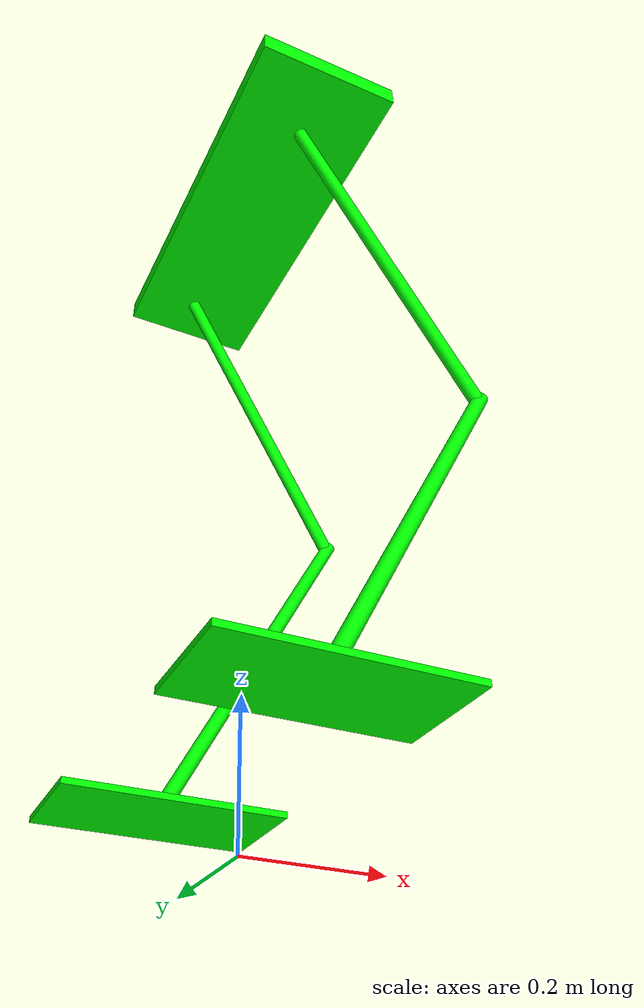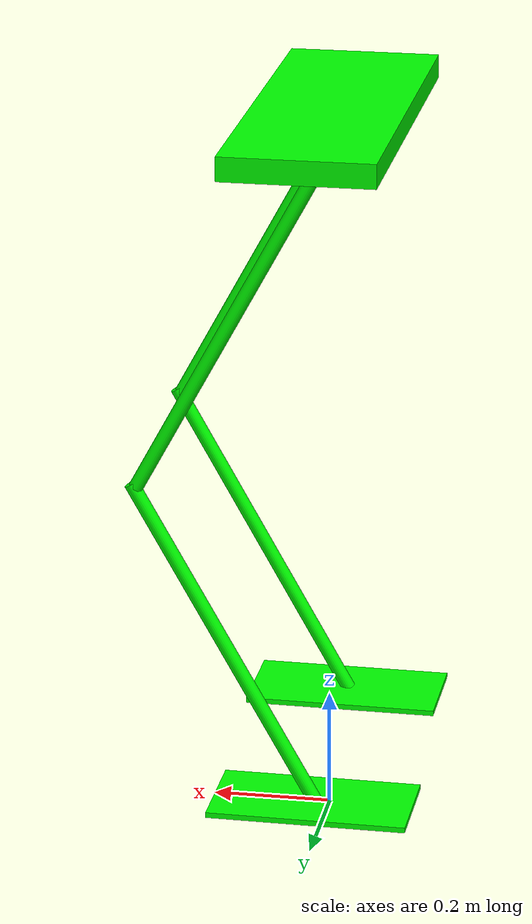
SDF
<?xml version='1.0'?>
<sdf version='1.7'>
  <model name='green-robot'>
    <model name='green-robot'>
      <link name='link_0'>
        <inertial>
          <mass>0.00693394</mass>
          <inertia>
            <ixx>0.00027257</ixx>
            <ixy>0</ixy>
            <ixz>0</ixz>
            <iyy>3.743e-05</iyy>
            <iyz>0</iyz>
            <izz>0.00030813</izz>
          </inertia>
          <pose>0 0 0 0 -0 0</pose>
        </inertial>
        <pose>-0.000636 0.001622 1.21471 0 -0 0</pose>
        <gravity>0</gravity>
        <self_collide>0</self_collide>
        <kinematic>0</kinematic>
        <enable_wind>0</enable_wind>
        <visual name='visual'>
          <pose>0 0 0 0 -0 0</pose>
          <geometry>
            <box>
              <size>0.251315 0.685637 0.040238</size>
            </box>
          </geometry>
          <material>
            <lighting>1</lighting>
            <script>
              <uri>file://media/materials/scripts/gazebo.material</uri>
              <name>Gazebo/Grey</name>
            </script>
            <shader type='pixel'>
              <normal_map>__default__</normal_map>
            </shader>
            <ambient>0 1 0 1</ambient>
            <diffuse>0 1 0 1</diffuse>
            <specular>0 1 0 1</specular>
            <emissive>0 0 0 1</emissive>
          </material>
          <transparency>0</transparency>
          <cast_shadows>1</cast_shadows>
        </visual>
        <collision name='collision'>
          <laser_retro>0</laser_retro>
          <max_contacts>10</max_contacts>
          <pose>0 0 0 0 -0 0</pose>
          <geometry>
            <box>
              <size>0.251315 0.685637 0.040238</size>
            </box>
          </geometry>
          <surface>
            <friction>
              <ode>
                <mu>1</mu>
                <mu2>1</mu2>
                <fdir1>0 0 0</fdir1>
                <slip1>0</slip1>
                <slip2>0</slip2>
              </ode>
              <torsional>
                <coefficient>1</coefficient>
                <patch_radius>0</patch_radius>
                <surface_radius>0</surface_radius>
                <use_patch_radius>1</use_patch_radius>
                <ode>
                  <slip>0</slip>
                </ode>
              </torsional>
            </friction>
            <bounce>
              <restitution_coefficient>0</restitution_coefficient>
              <threshold>1e+06</threshold>
            </bounce>
            <contact>
              <collide_without_contact>0</collide_without_contact>
              <collide_without_contact_bitmask>1</collide_without_contact_bitmask>
              <collide_bitmask>1</collide_bitmask>
              <ode>
                <soft_cfm>0</soft_cfm>
                <soft_erp>0.2</soft_erp>
                <kp>1e+13</kp>
                <kd>1</kd>
                <max_vel>0.01</max_vel>
                <min_depth>0</min_depth>
              </ode>
              <bullet>
                <split_impulse>1</split_impulse>
                <split_impulse_penetration_threshold>-0.01</split_impulse_penetration_threshold>
                <soft_cfm>0</soft_cfm>
                <soft_erp>0.2</soft_erp>
                <kp>1e+13</kp>
                <kd>1</kd>
              </bullet>
            </contact>
          </surface>
        </collision>
      </link>
      <link name='link_0_0_clone'>
        <inertial>
          <mass>0.000350394</mass>
          <inertia>
            <ixx>1.10999e-05</ixx>
            <ixy>0</ixy>
            <ixz>0</ixz>
            <iyy>1.10999e-05</iyy>
            <iyz>0</iyz>
            <izz>2.49424e-08</izz>
          </inertia>
          <pose>0 0 0 0 -0 0</pose>
        </inertial>
        <pose>0.148869 -0.215496 0.920825 0 -0.497724 0</pose>
        <gravity>1</gravity>
        <self_collide>0</self_collide>
        <kinematic>0</kinematic>
        <enable_wind>0</enable_wind>
        <visual name='visual_0'>
          <pose>0 0 0 0 -0 0</pose>
          <geometry>
            <cylinder>
              <radius>0.0119318</radius>
              <length>0.616209</length>
            </cylinder>
          </geometry>
          <material>
            <lighting>1</lighting>
            <script>
              <uri>file://media/materials/scripts/gazebo.material</uri>
              <name>Gazebo/Grey</name>
            </script>
            <shader type='pixel'>
              <normal_map>__default__</normal_map>
            </shader>
            <ambient>0 1 0 1</ambient>
            <diffuse>0 1 0 1</diffuse>
            <specular>0 1 0 1</specular>
            <emissive>0 0 0 1</emissive>
          </material>
          <transparency>0</transparency>
          <cast_shadows>1</cast_shadows>
        </visual>
        <collision name='collision'>
          <laser_retro>0</laser_retro>
          <max_contacts>10</max_contacts>
          <pose>0 0 0 0 -0 0</pose>
          <geometry>
            <cylinder>
              <radius>0.011932</radius>
              <length>0.616209</length>
            </cylinder>
          </geometry>
          <surface>
            <friction>
              <ode>
                <mu>1</mu>
                <mu2>1</mu2>
                <fdir1>0 0 0</fdir1>
                <slip1>0</slip1>
                <slip2>0</slip2>
              </ode>
              <torsional>
                <coefficient>1</coefficient>
                <patch_radius>0</patch_radius>
                <surface_radius>0</surface_radius>
                <use_patch_radius>1</use_patch_radius>
                <ode>
                  <slip>0</slip>
                </ode>
              </torsional>
            </friction>
            <bounce>
              <restitution_coefficient>0</restitution_coefficient>
              <threshold>1e+06</threshold>
            </bounce>
            <contact>
              <collide_without_contact>0</collide_without_contact>
              <collide_without_contact_bitmask>1</collide_without_contact_bitmask>
              <collide_bitmask>1</collide_bitmask>
              <ode>
                <soft_cfm>0</soft_cfm>
                <soft_erp>0.2</soft_erp>
                <kp>1e+13</kp>
                <kd>1</kd>
                <max_vel>0.01</max_vel>
                <min_depth>0</min_depth>
              </ode>
              <bullet>
                <split_impulse>1</split_impulse>
                <split_impulse_penetration_threshold>-0.01</split_impulse_penetration_threshold>
                <soft_cfm>0</soft_cfm>
                <soft_erp>0.2</soft_erp>
                <kp>1e+13</kp>
                <kd>1</kd>
              </bullet>
            </contact>
          </surface>
        </collision>
      </link>
      <link name='link_0_0_clone_clone'>
        <inertial>
          <mass>0.000350394</mass>
          <inertia>
            <ixx>1.10999e-05</ixx>
            <ixy>0</ixy>
            <ixz>0</ixz>
            <iyy>1.10999e-05</iyy>
            <iyz>0</iyz>
            <izz>2.49424e-08</izz>
          </inertia>
          <pose>0 0 0 0 -0 0</pose>
        </inertial>
        <pose>0.128825 0.256686 0.921798 0 -0.497724 0</pose>
        <gravity>1</gravity>
        <self_collide>0</self_collide>
        <kinematic>0</kinematic>
        <enable_wind>0</enable_wind>
        <visual name='visual_0'>
          <pose>0 0 0 0 -0 0</pose>
          <geometry>
            <cylinder>
              <radius>0.0119318</radius>
              <length>0.616209</length>
            </cylinder>
          </geometry>
          <material>
            <lighting>1</lighting>
            <script>
              <uri>file://media/materials/scripts/gazebo.material</uri>
              <name>Gazebo/Grey</name>
            </script>
            <shader type='pixel'>
              <normal_map>__default__</normal_map>
            </shader>
            <ambient>0 1 0 1</ambient>
            <diffuse>0 1 0 1</diffuse>
            <specular>0 1 0 1</specular>
            <emissive>0 0 0 1</emissive>
          </material>
          <transparency>0</transparency>
          <cast_shadows>1</cast_shadows>
        </visual>
        <collision name='collision'>
          <laser_retro>0</laser_retro>
          <max_contacts>10</max_contacts>
          <pose>0 0 0 0 -0 0</pose>
          <geometry>
            <cylinder>
              <radius>0.011932</radius>
              <length>0.616209</length>
            </cylinder>
          </geometry>
          <surface>
            <friction>
              <ode>
                <mu>1</mu>
                <mu2>1</mu2>
                <fdir1>0 0 0</fdir1>
                <slip1>0</slip1>
                <slip2>0</slip2>
              </ode>
              <torsional>
                <coefficient>1</coefficient>
                <patch_radius>0</patch_radius>
                <surface_radius>0</surface_radius>
                <use_patch_radius>1</use_patch_radius>
                <ode>
                  <slip>0</slip>
                </ode>
              </torsional>
            </friction>
            <bounce>
              <restitution_coefficient>0</restitution_coefficient>
              <threshold>1e+06</threshold>
            </bounce>
            <contact>
              <collide_without_contact>0</collide_without_contact>
              <collide_without_contact_bitmask>1</collide_without_contact_bitmask>
              <collide_bitmask>1</collide_bitmask>
              <ode>
                <soft_cfm>0</soft_cfm>
                <soft_erp>0.2</soft_erp>
                <kp>1e+13</kp>
                <kd>1</kd>
                <max_vel>0.01</max_vel>
                <min_depth>0</min_depth>
              </ode>
              <bullet>
                <split_impulse>1</split_impulse>
                <split_impulse_penetration_threshold>-0.01</split_impulse_penetration_threshold>
                <soft_cfm>0</soft_cfm>
                <soft_erp>0.2</soft_erp>
                <kp>1e+13</kp>
                <kd>1</kd>
              </bullet>
            </contact>
          </surface>
        </collision>
      </link>
      <link name='link_0_0_clone_clone_2'>
        <inertial>
          <mass>0.000350394</mass>
          <inertia>
            <ixx>1.10999e-05</ixx>
            <ixy>0</ixy>
            <ixz>0</ixz>
            <iyy>1.10999e-05</iyy>
            <iyz>0</iyz>
            <izz>2.49424e-08</izz>
          </inertia>
          <pose>0 0 0 0 -0 0</pose>
        </inertial>
        <pose>0.152447 -0.215495 0.389072 0 0.511281 0</pose>
        <gravity>1</gravity>
        <self_collide>0</self_collide>
        <kinematic>0</kinematic>
        <enable_wind>0</enable_wind>
        <visual name='visual_0'>
          <pose>0 0 0 0 -0 0</pose>
          <geometry>
            <cylinder>
              <radius>0.0119318</radius>
              <length>0.616209</length>
            </cylinder>
          </geometry>
          <material>
            <lighting>1</lighting>
            <script>
              <uri>file://media/materials/scripts/gazebo.material</uri>
              <name>Gazebo/Grey</name>
            </script>
            <shader type='pixel'>
              <normal_map>__default__</normal_map>
            </shader>
            <ambient>0 1 0 1</ambient>
            <diffuse>0 1 0 1</diffuse>
            <specular>0 1 0 1</specular>
            <emissive>0 0 0 1</emissive>
          </material>
          <transparency>0</transparency>
          <cast_shadows>1</cast_shadows>
        </visual>
        <collision name='collision'>
          <laser_retro>0</laser_retro>
          <max_contacts>10</max_contacts>
          <pose>0 0 0 0 -0 0</pose>
          <geometry>
            <cylinder>
              <radius>0.011932</radius>
              <length>0.616209</length>
            </cylinder>
          </geometry>
          <surface>
            <friction>
              <ode>
                <mu>1</mu>
                <mu2>1</mu2>
                <fdir1>0 0 0</fdir1>
                <slip1>0</slip1>
                <slip2>0</slip2>
              </ode>
              <torsional>
                <coefficient>1</coefficient>
                <patch_radius>0</patch_radius>
                <surface_radius>0</surface_radius>
                <use_patch_radius>1</use_patch_radius>
                <ode>
                  <slip>0</slip>
                </ode>
              </torsional>
            </friction>
            <bounce>
              <restitution_coefficient>0</restitution_coefficient>
              <threshold>1e+06</threshold>
            </bounce>
            <contact>
              <collide_without_contact>0</collide_without_contact>
              <collide_without_contact_bitmask>1</collide_without_contact_bitmask>
              <collide_bitmask>1</collide_bitmask>
              <ode>
                <soft_cfm>0</soft_cfm>
                <soft_erp>0.2</soft_erp>
                <kp>1e+13</kp>
                <kd>1</kd>
                <max_vel>0.01</max_vel>
                <min_depth>0</min_depth>
              </ode>
              <bullet>
                <split_impulse>1</split_impulse>
                <split_impulse_penetration_threshold>-0.01</split_impulse_penetration_threshold>
                <soft_cfm>0</soft_cfm>
                <soft_erp>0.2</soft_erp>
                <kp>1e+13</kp>
                <kd>1</kd>
              </bullet>
            </contact>
          </surface>
        </collision>
      </link>
      <link name='link_0_0_clone_clone_2_clone'>
        <inertial>
          <mass>0.000350394</mass>
          <inertia>
            <ixx>1.10999e-05</ixx>
            <ixy>0</ixy>
            <ixz>0</ixz>
            <iyy>1.10999e-05</iyy>
            <iyz>0</iyz>
            <izz>2.49424e-08</izz>
          </inertia>
          <pose>0 0 0 0 -0 0</pose>
        </inertial>
        <pose>0.132403 0.256686 0.389072 0 0.511281 0</pose>
        <gravity>1</gravity>
        <self_collide>0</self_collide>
        <kinematic>0</kinematic>
        <enable_wind>0</enable_wind>
        <visual name='visual_0'>
          <pose>0 0 0 0 -0 0</pose>
          <geometry>
            <cylinder>
              <radius>0.0119318</radius>
              <length>0.616209</length>
            </cylinder>
          </geometry>
          <material>
            <lighting>1</lighting>
            <script>
              <uri>file://media/materials/scripts/gazebo.material</uri>
              <name>Gazebo/Grey</name>
            </script>
            <shader type='pixel'>
              <normal_map>__default__</normal_map>
            </shader>
            <ambient>0 1 0 1</ambient>
            <diffuse>0 1 0 1</diffuse>
            <specular>0 1 0 1</specular>
            <emissive>0 0 0 1</emissive>
          </material>
          <transparency>0</transparency>
          <cast_shadows>1</cast_shadows>
        </visual>
        <collision name='collision'>
          <laser_retro>0</laser_retro>
          <max_contacts>10</max_contacts>
          <pose>0 0 0 0 -0 0</pose>
          <geometry>
            <cylinder>
              <radius>0.011932</radius>
              <length>0.616209</length>
            </cylinder>
          </geometry>
          <surface>
            <friction>
              <ode>
                <mu>1</mu>
                <mu2>1</mu2>
                <fdir1>0 0 0</fdir1>
                <slip1>0</slip1>
                <slip2>0</slip2>
              </ode>
              <torsional>
                <coefficient>1</coefficient>
                <patch_radius>0</patch_radius>
                <surface_radius>0</surface_radius>
                <use_patch_radius>1</use_patch_radius>
                <ode>
                  <slip>0</slip>
                </ode>
              </torsional>
            </friction>
            <bounce>
              <restitution_coefficient>0</restitution_coefficient>
              <threshold>1e+06</threshold>
            </bounce>
            <contact>
              <collide_without_contact>0</collide_without_contact>
              <collide_without_contact_bitmask>1</collide_without_contact_bitmask>
              <collide_bitmask>1</collide_bitmask>
              <ode>
                <soft_cfm>0</soft_cfm>
                <soft_erp>0.2</soft_erp>
                <kp>1e+13</kp>
                <kd>1</kd>
                <max_vel>0.01</max_vel>
                <min_depth>0</min_depth>
              </ode>
              <bullet>
                <split_impulse>1</split_impulse>
                <split_impulse_penetration_threshold>-0.01</split_impulse_penetration_threshold>
                <soft_cfm>0</soft_cfm>
                <soft_erp>0.2</soft_erp>
                <kp>1e+13</kp>
                <kd>1</kd>
              </bullet>
            </contact>
          </surface>
        </collision>
      </link>
      <link name='link_0_clone'>
        <inertial>
          <mass>0.000508908</mass>
          <inertia>
            <ixx>4.59216e-06</ixx>
            <ixy>0</ixy>
            <ixz>0</ixz>
            <iyy>1.22054e-06</iyy>
            <iyz>0</iyz>
            <izz>5.80563e-06</izz>
          </inertia>
          <pose>0 0 0 0 -0 0</pose>
        </inertial>
        <pose>0.003853 -0.215495 0.119095 0 0 -1.57803</pose>
        <gravity>1</gravity>
        <self_collide>0</self_collide>
        <kinematic>0</kinematic>
        <enable_wind>0</enable_wind>
        <visual name='visual'>
          <pose>0 0 0 0 -0 0</pose>
          <geometry>
            <box>
              <size>0.169401 0.328937 0.009131</size>
            </box>
          </geometry>
          <material>
            <lighting>1</lighting>
            <script>
              <uri>file://media/materials/scripts/gazebo.material</uri>
              <name>Gazebo/Grey</name>
            </script>
            <shader type='pixel'>
              <normal_map>__default__</normal_map>
            </shader>
            <ambient>0 1 0 1</ambient>
            <diffuse>0 1 0 1</diffuse>
            <specular>0 1 0 1</specular>
            <emissive>0 0 0 1</emissive>
          </material>
          <transparency>0</transparency>
          <cast_shadows>1</cast_shadows>
        </visual>
        <collision name='collision'>
          <laser_retro>0</laser_retro>
          <max_contacts>10</max_contacts>
          <pose>0 0 0 0 -0 0</pose>
          <geometry>
            <box>
              <size>0.169401 0.328937 0.009131</size>
            </box>
          </geometry>
          <surface>
            <friction>
              <ode>
                <mu>1</mu>
                <mu2>1</mu2>
                <fdir1>0 0 0</fdir1>
                <slip1>0</slip1>
                <slip2>0</slip2>
              </ode>
              <torsional>
                <coefficient>1</coefficient>
                <patch_radius>0</patch_radius>
                <surface_radius>0</surface_radius>
                <use_patch_radius>1</use_patch_radius>
                <ode>
                  <slip>0</slip>
                </ode>
              </torsional>
            </friction>
            <bounce>
              <restitution_coefficient>0</restitution_coefficient>
              <threshold>1e+06</threshold>
            </bounce>
            <contact>
              <collide_without_contact>0</collide_without_contact>
              <collide_without_contact_bitmask>1</collide_without_contact_bitmask>
              <collide_bitmask>1</collide_bitmask>
              <ode>
                <soft_cfm>0</soft_cfm>
                <soft_erp>0.2</soft_erp>
                <kp>1e+13</kp>
                <kd>1</kd>
                <max_vel>0.01</max_vel>
                <min_depth>0</min_depth>
              </ode>
              <bullet>
                <split_impulse>1</split_impulse>
                <split_impulse_penetration_threshold>-0.01</split_impulse_penetration_threshold>
                <soft_cfm>0</soft_cfm>
                <soft_erp>0.2</soft_erp>
                <kp>1e+13</kp>
                <kd>1</kd>
              </bullet>
            </contact>
          </surface>
        </collision>
      </link>
      <link name='link_0_clone_clone'>
        <inertial>
          <mass>0.000508908</mass>
          <inertia>
            <ixx>4.59216e-06</ixx>
            <ixy>0</ixy>
            <ixz>0</ixz>
            <iyy>1.22054e-06</iyy>
            <iyz>0</iyz>
            <izz>5.80563e-06</izz>
          </inertia>
          <pose>0 0 0 0 -0 0</pose>
        </inertial>
        <pose>-0.01593 0.256685 0.119095 0 0 -1.57803</pose>
        <gravity>1</gravity>
        <self_collide>0</self_collide>
        <kinematic>0</kinematic>
        <enable_wind>0</enable_wind>
        <visual name='visual'>
          <pose>0 0 0 0 -0 0</pose>
          <geometry>
            <box>
              <size>0.169401 0.328937 0.009131</size>
            </box>
          </geometry>
          <material>
            <lighting>1</lighting>
            <script>
              <uri>file://media/materials/scripts/gazebo.material</uri>
              <name>Gazebo/Grey</name>
            </script>
            <shader type='pixel'>
              <normal_map>__default__</normal_map>
            </shader>
            <ambient>0 1 0 1</ambient>
            <diffuse>0 1 0 1</diffuse>
            <specular>0 1 0 1</specular>
            <emissive>0 0 0 1</emissive>
          </material>
          <transparency>0</transparency>
          <cast_shadows>1</cast_shadows>
        </visual>
        <collision name='collision'>
          <laser_retro>0</laser_retro>
          <max_contacts>10</max_contacts>
          <pose>0 0 0 0 -0 0</pose>
          <geometry>
            <box>
              <size>0.169401 0.328937 0.009131</size>
            </box>
          </geometry>
          <surface>
            <friction>
              <ode>
                <mu>1</mu>
                <mu2>1</mu2>
                <fdir1>0 0 0</fdir1>
                <slip1>0</slip1>
                <slip2>0</slip2>
              </ode>
              <torsional>
                <coefficient>1</coefficient>
                <patch_radius>0</patch_radius>
                <surface_radius>0</surface_radius>
                <use_patch_radius>1</use_patch_radius>
                <ode>
                  <slip>0</slip>
                </ode>
              </torsional>
            </friction>
            <bounce>
              <restitution_coefficient>0</restitution_coefficient>
              <threshold>1e+06</threshold>
            </bounce>
            <contact>
              <collide_without_contact>0</collide_without_contact>
              <collide_without_contact_bitmask>1</collide_without_contact_bitmask>
              <collide_bitmask>1</collide_bitmask>
              <ode>
                <soft_cfm>0</soft_cfm>
                <soft_erp>0.2</soft_erp>
                <kp>1e+13</kp>
                <kd>1</kd>
                <max_vel>0.01</max_vel>
                <min_depth>0</min_depth>
              </ode>
              <bullet>
                <split_impulse>1</split_impulse>
                <split_impulse_penetration_threshold>-0.01</split_impulse_penetration_threshold>
                <soft_cfm>0</soft_cfm>
                <soft_erp>0.2</soft_erp>
                <kp>1e+13</kp>
                <kd>1</kd>
              </bullet>
            </contact>
          </surface>
        </collision>
      </link>
      <joint name='link_0_0_clone_JOINT_6' type='fixed'>
        <parent>link_0_0_clone</parent>
        <child>link_0_0_clone_clone_2</child>
        <pose>0 0 0 0 -0 0</pose>
        <physics>
          <ode>
            <limit>
              <cfm>0</cfm>
              <erp>0.2</erp>
            </limit>
            <suspension>
              <cfm>0</cfm>
              <erp>0.2</erp>
            </suspension>
          </ode>
        </physics>
      </joint>
      <joint name='link_0_0_clone_clone_2_JOINT_10' type='fixed'>
        <parent>link_0_0_clone_clone_2</parent>
        <child>link_0_clone</child>
        <pose>0 0 0 0 -0 0</pose>
        <physics>
          <ode>
            <limit>
              <cfm>0</cfm>
              <erp>0.2</erp>
            </limit>
            <suspension>
              <cfm>0</cfm>
              <erp>0.2</erp>
            </suspension>
          </ode>
        </physics>
      </joint>
      <joint name='link_0_0_clone_clone_2_JOINT_11' type='fixed'>
        <parent>link_0_0_clone_clone_2</parent>
        <child>link_0_clone</child>
        <pose>0 0 0 0 -0 0</pose>
        <physics>
          <ode>
            <limit>
              <cfm>0</cfm>
              <erp>0.2</erp>
            </limit>
            <suspension>
              <cfm>0</cfm>
              <erp>0.2</erp>
            </suspension>
          </ode>
        </physics>
      </joint>
      <joint name='link_0_0_clone_clone_2_clone_JOINT_12' type='fixed'>
        <parent>link_0_0_clone_clone_2_clone</parent>
        <child>link_0_clone_clone</child>
        <pose>0 0 0 0 -0 0</pose>
        <physics>
          <ode>
            <limit>
              <cfm>0</cfm>
              <erp>0.2</erp>
            </limit>
            <suspension>
              <cfm>0</cfm>
              <erp>0.2</erp>
            </suspension>
          </ode>
        </physics>
      </joint>
      <joint name='link_0_0_clone_clone_JOINT_8' type='fixed'>
        <parent>link_0_0_clone_clone</parent>
        <child>link_0_0_clone_clone_2_clone</child>
        <pose>0 0 0 0 -0 0</pose>
        <physics>
          <ode>
            <limit>
              <cfm>0</cfm>
              <erp>0.2</erp>
            </limit>
            <suspension>
              <cfm>0</cfm>
              <erp>0.2</erp>
            </suspension>
          </ode>
        </physics>
      </joint>
      <joint name='link_0_JOINT_1' type='fixed'>
        <parent>link_0</parent>
        <child>link_0_0_clone</child>
        <pose>0 0 0 0 -0 0</pose>
        <physics>
          <ode>
            <limit>
              <cfm>0</cfm>
              <erp>0.2</erp>
            </limit>
            <suspension>
              <cfm>0</cfm>
              <erp>0.2</erp>
            </suspension>
          </ode>
        </physics>
      </joint>
      <joint name='link_0_JOINT_4' type='fixed'>
        <parent>link_0</parent>
        <child>link_0_0_clone_clone</child>
        <pose>0 0 0 0 -0 0</pose>
        <physics>
          <ode>
            <limit>
              <cfm>0</cfm>
              <erp>0.2</erp>
            </limit>
            <suspension>
              <cfm>0</cfm>
              <erp>0.2</erp>
            </suspension>
          </ode>
        </physics>
      </joint>
      <static>0</static>
      <allow_auto_disable>1</allow_auto_disable>
      <pose>-4e-06 0 0 0 -0 0</pose>
    </model>
    <joint name='link_0_0_clone_JOINT_2' type='fixed'>
      <parent>green-robot::link_0_0_clone</parent>
      <child>green-robot::link_0_0_clone_clone</child>
      <pose>0 0 0 0 -0 0</pose>
      <physics>
        <ode>
          <limit>
            <cfm>0</cfm>
            <erp>0.2</erp>
          </limit>
          <suspension>
            <cfm>0</cfm>
            <erp>0.2</erp>
          </suspension>
        </ode>
      </physics>
    </joint>
    <joint name='link_0_0_clone_clone_2_JOINT_3' type='fixed'>
      <parent>green-robot::link_0_0_clone_clone_2</parent>
      <child>green-robot::link_0_0_clone_clone_2_clone_LINK_FRAME_VISUAL___X_AXIS</child>
      <pose>0 0 0 0 -0 0</pose>
      <physics>
        <ode>
          <limit>
            <cfm>0</cfm>
            <erp>0.2</erp>
          </limit>
          <suspension>
            <cfm>0</cfm>
            <erp>0.2</erp>
          </suspension>
        </ode>
      </physics>
    </joint>
    <joint name='link_0_clone_JOINT_4' type='fixed'>
      <parent>green-robot::link_0_clone</parent>
      <child>green-robot::link_0_clone_clone</child>
      <pose>0 0 0 0 -0 0</pose>
      <physics>
        <ode>
          <limit>
            <cfm>0</cfm>
            <erp>0.2</erp>
          </limit>
          <suspension>
            <cfm>0</cfm>
            <erp>0.2</erp>
          </suspension>
        </ode>
      </physics>
    </joint>
    <static>1</static>
    <allow_auto_disable>1</allow_auto_disable>
  </model>
</sdf>
